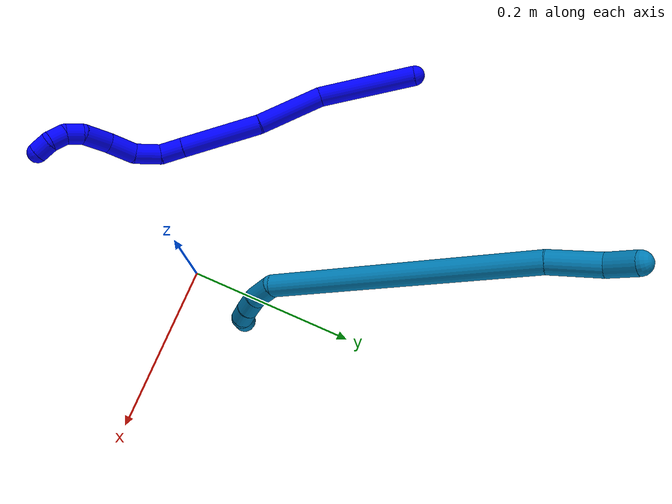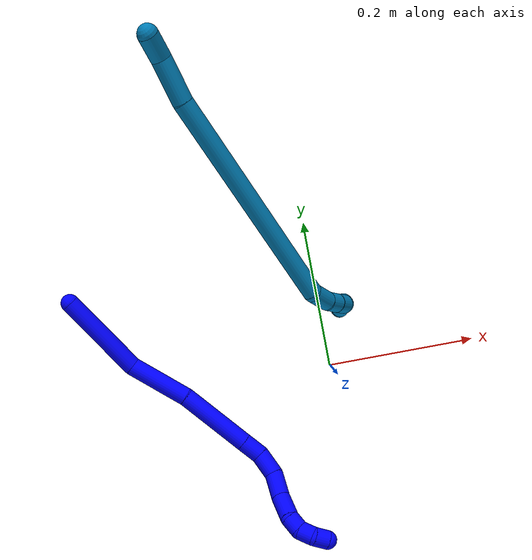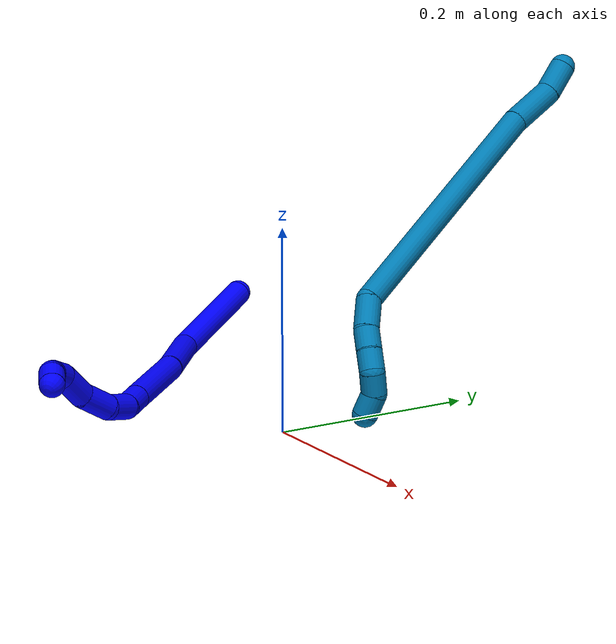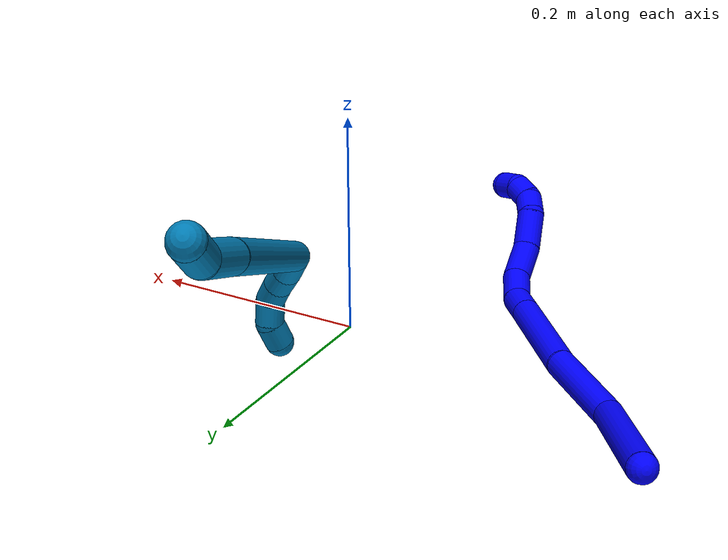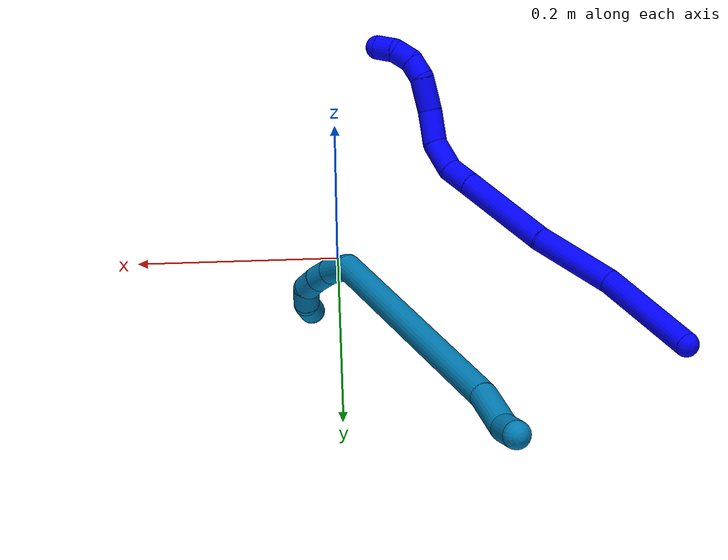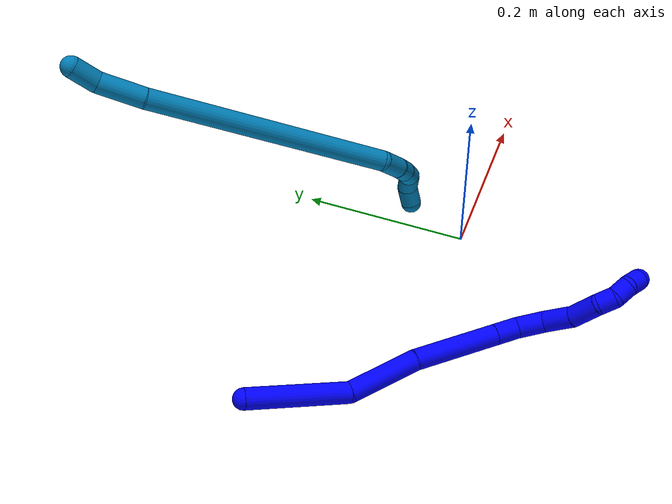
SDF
<sdf version="1.7">
 <world name="default">
  <model name="1">
   <static>0</static>
   <link name="1">
    <collision name="collision-cylinder-e_1_1_4">
     <pose>0.005987 -0.009109 -0.059688 2.99015 0.098828 1.15537</pose>
     <geometry><cylinder><radius>0.0125</radius><length>0.12135</length></cylinder></geometry>
     <surface>
      <friction><ode><mu>1.16</mu><mu2>1.16</mu2><slip1>0</slip1><slip2>0</slip2></ode></friction>
      <contact><ode><kp>1e+06</kp><kd>1</kd><max_vel>0</max_vel><min_depth>0.001</min_depth></ode></contact>
     </surface>
    </collision>
    <visual name="visual-cylinder-e_1_1_4">
     <pose>0.005987 -0.009109 -0.059688 2.99015 0.098828 1.15537</pose>
     <geometry><cylinder><radius>0.0125</radius><length>0.12135</length></cylinder></geometry>
     <material><ambient>0 0 1 1</ambient></material>
    </visual>
    <collision name="collision-cylinder-e_2_4_5">
     <pose>0.031057 -0.018749 -0.157565 3.12768 0.46339 3.08263</pose>
     <geometry><cylinder><radius>0.0125</radius><length>0.085391</length></cylinder></geometry>
     <surface>
      <friction><ode><mu>1.16</mu><mu2>1.16</mu2><slip1>0</slip1><slip2>0</slip2></ode></friction>
      <contact><ode><kp>1e+06</kp><kd>1</kd><max_vel>0</max_vel><min_depth>0.001</min_depth></ode></contact>
     </surface>
    </collision>
    <visual name="visual-cylinder-e_2_4_5">
     <pose>0.031057 -0.018749 -0.157565 3.12768 0.46339 3.08263</pose>
     <geometry><cylinder><radius>0.0125</radius><length>0.085391</length></cylinder></geometry>
     <material><ambient>0 0 1 1</ambient></material>
    </visual>
    <collision name="collision-cylinder-e_3_5_6">
     <pose>0.067427 -0.02543 -0.24259 3.01104 0.35079 2.43483</pose>
     <geometry><cylinder><radius>0.0125</radius><length>0.100602</length></cylinder></geometry>
     <surface>
      <friction><ode><mu>1.16</mu><mu2>1.16</mu2><slip1>0</slip1><slip2>0</slip2></ode></friction>
      <contact><ode><kp>1e+06</kp><kd>1</kd><max_vel>0</max_vel><min_depth>0.001</min_depth></ode></contact>
     </surface>
    </collision>
    <visual name="visual-cylinder-e_3_5_6">
     <pose>0.067427 -0.02543 -0.24259 3.01104 0.35079 2.43483</pose>
     <geometry><cylinder><radius>0.0125</radius><length>0.100602</length></cylinder></geometry>
     <material><ambient>0 0 1 1</ambient></material>
    </visual>
    <collision name="collision-cylinder-e_4_6_7">
     <pose>0.089559 -0.033195 -0.302743 3.02086 0.346715 2.47689</pose>
     <geometry><cylinder><radius>0.0125</radius><length>0.028527</length></cylinder></geometry>
     <surface>
      <friction><ode><mu>1.16</mu><mu2>1.16</mu2><slip1>0</slip1><slip2>0</slip2></ode></friction>
      <contact><ode><kp>1e+06</kp><kd>1</kd><max_vel>0</max_vel><min_depth>0.001</min_depth></ode></contact>
     </surface>
    </collision>
    <visual name="visual-cylinder-e_4_6_7">
     <pose>0.089559 -0.033195 -0.302743 3.02086 0.346715 2.47689</pose>
     <geometry><cylinder><radius>0.0125</radius><length>0.028527</length></cylinder></geometry>
     <material><ambient>0 0 1 1</ambient></material>
    </visual>
    <collision name="collision-cylinder-e_5_7_8">
     <pose>0.10069 -0.042116 -0.329174 2.63336 0.396446 1.31654</pose>
     <geometry><cylinder><radius>0.0125</radius><length>0.032548</length></cylinder></geometry>
     <surface>
      <friction><ode><mu>1.16</mu><mu2>1.16</mu2><slip1>0</slip1><slip2>0</slip2></ode></friction>
      <contact><ode><kp>1e+06</kp><kd>1</kd><max_vel>0</max_vel><min_depth>0.001</min_depth></ode></contact>
     </surface>
    </collision>
    <visual name="visual-cylinder-e_5_7_8">
     <pose>0.10069 -0.042116 -0.329174 2.63336 0.396446 1.31654</pose>
     <geometry><cylinder><radius>0.0125</radius><length>0.032548</length></cylinder></geometry>
     <material><ambient>0 0 1 1</ambient></material>
    </visual>
    <collision name="collision-cylinder-e_6_8_9">
     <pose>0.114398 -0.062611 -0.351257 2.16796 0.435597 0.792045</pose>
     <geometry><cylinder><radius>0.0125</radius><length>0.035186</length></cylinder></geometry>
     <surface>
      <friction><ode><mu>1.16</mu><mu2>1.16</mu2><slip1>0</slip1><slip2>0</slip2></ode></friction>
      <contact><ode><kp>1e+06</kp><kd>1</kd><max_vel>0</max_vel><min_depth>0.001</min_depth></ode></contact>
     </surface>
    </collision>
    <visual name="visual-cylinder-e_6_8_9">
     <pose>0.114398 -0.062611 -0.351257 2.16796 0.435597 0.792045</pose>
     <geometry><cylinder><radius>0.0125</radius><length>0.035186</length></cylinder></geometry>
     <material><ambient>0 0 1 1</ambient></material>
    </visual>
    <collision name="collision-cylinder-e_7_9_10">
     <pose>0.133039 -0.08773 -0.366911 2.08155 0.687011 1.09613</pose>
     <geometry><cylinder><radius>0.0125</radius><length>0.035373</length></cylinder></geometry>
     <surface>
      <friction><ode><mu>1.16</mu><mu2>1.16</mu2><slip1>0</slip1><slip2>0</slip2></ode></friction>
      <contact><ode><kp>1e+06</kp><kd>1</kd><max_vel>0</max_vel><min_depth>0.001</min_depth></ode></contact>
     </surface>
    </collision>
    <visual name="visual-cylinder-e_7_9_10">
     <pose>0.133039 -0.08773 -0.366911 2.08155 0.687011 1.09613</pose>
     <geometry><cylinder><radius>0.0125</radius><length>0.035373</length></cylinder></geometry>
     <material><ambient>0 0 1 1</ambient></material>
    </visual>
    <collision name="collision-cylinder-e_8_10_11">
     <pose>0.150132 -0.104202 -0.380997 2.5912 0.594846 1.6528</pose>
     <geometry><cylinder><radius>0.0125</radius><length>0.020972</length></cylinder></geometry>
     <surface>
      <friction><ode><mu>1.16</mu><mu2>1.16</mu2><slip1>0</slip1><slip2>0</slip2></ode></friction>
      <contact><ode><kp>1e+06</kp><kd>1</kd><max_vel>0</max_vel><min_depth>0.001</min_depth></ode></contact>
     </surface>
    </collision>
    <visual name="visual-cylinder-e_8_10_11">
     <pose>0.150132 -0.104202 -0.380997 2.5912 0.594846 1.6528</pose>
     <geometry><cylinder><radius>0.0125</radius><length>0.020972</length></cylinder></geometry>
     <material><ambient>0 0 1 1</ambient></material>
    </visual>
    <collision name="collision-cylinder-e_9_11_12">
     <pose>0.162707 -0.108713 -0.395833 -3.13736 0.73345 -3.13057</pose>
     <geometry><cylinder><radius>0.0125</radius><length>0.020014</length></cylinder></geometry>
     <surface>
      <friction><ode><mu>1.16</mu><mu2>1.16</mu2><slip1>0</slip1><slip2>0</slip2></ode></friction>
      <contact><ode><kp>1e+06</kp><kd>1</kd><max_vel>0</max_vel><min_depth>0.001</min_depth></ode></contact>
     </surface>
    </collision>
    <visual name="visual-cylinder-e_9_11_12">
     <pose>0.162707 -0.108713 -0.395833 -3.13736 0.73345 -3.13057</pose>
     <geometry><cylinder><radius>0.0125</radius><length>0.020014</length></cylinder></geometry>
     <material><ambient>0 0 1 1</ambient></material>
    </visual>
    <collision name="collision-cylinder-e_10_12_2">
     <pose>0.172572 -0.105755 -0.412311 -2.82862 0.321483 -1.59806</pose>
     <geometry><cylinder><radius>0.0125</radius><length>0.020037</length></cylinder></geometry>
     <surface>
      <friction><ode><mu>1.16</mu><mu2>1.16</mu2><slip1>0</slip1><slip2>0</slip2></ode></friction>
      <contact><ode><kp>1e+06</kp><kd>1</kd><max_vel>0</max_vel><min_depth>0.001</min_depth></ode></contact>
     </surface>
    </collision>
    <visual name="visual-cylinder-e_10_12_2">
     <pose>0.172572 -0.105755 -0.412311 -2.82862 0.321483 -1.59806</pose>
     <geometry><cylinder><radius>0.0125</radius><length>0.020037</length></cylinder></geometry>
     <material><ambient>0 0 1 1</ambient></material>
    </visual>
    <collision name="collision-sphere-2">
     <pose>0.175737 -0.102828 -0.421354 0 -0 0</pose>
     <geometry><sphere><radius>0.0125</radius></sphere></geometry>
     <surface>
      <friction><ode><mu>1.16</mu><mu2>1.16</mu2><slip1>0</slip1><slip2>0</slip2></ode></friction>
      <contact><ode><kp>1e+06</kp><kd>1</kd><max_vel>0</max_vel><min_depth>0.001</min_depth></ode></contact>
     </surface>
    </collision>
    <visual name="visual-sphere-2">
     <pose>0.175737 -0.102828 -0.421354 0 -0 0</pose>
     <geometry><sphere><radius>0.0125</radius></sphere></geometry>
     <material><ambient>0 0 1 1</ambient></material>
    </visual>
    <collision name="collision-sphere-12">
     <pose>0.169406 -0.108681 -0.403267 0 -0 0</pose>
     <geometry><sphere><radius>0.0125</radius></sphere></geometry>
     <surface>
      <friction><ode><mu>1.16</mu><mu2>1.16</mu2><slip1>0</slip1><slip2>0</slip2></ode></friction>
      <contact><ode><kp>1e+06</kp><kd>1</kd><max_vel>0</max_vel><min_depth>0.001</min_depth></ode></contact>
     </surface>
    </collision>
    <visual name="visual-sphere-12">
     <pose>0.169406 -0.108681 -0.403267 0 -0 0</pose>
     <geometry><sphere><radius>0.0125</radius></sphere></geometry>
     <material><ambient>0 0 1 1</ambient></material>
    </visual>
    <collision name="collision-sphere-11">
     <pose>0.156008 -0.108744 -0.3884 0 -0 0</pose>
     <geometry><sphere><radius>0.0125</radius></sphere></geometry>
     <surface>
      <friction><ode><mu>1.16</mu><mu2>1.16</mu2><slip1>0</slip1><slip2>0</slip2></ode></friction>
      <contact><ode><kp>1e+06</kp><kd>1</kd><max_vel>0</max_vel><min_depth>0.001</min_depth></ode></contact>
     </surface>
    </collision>
    <visual name="visual-sphere-11">
     <pose>0.156008 -0.108744 -0.3884 0 -0 0</pose>
     <geometry><sphere><radius>0.0125</radius></sphere></geometry>
     <material><ambient>0 0 1 1</ambient></material>
    </visual>
    <collision name="collision-sphere-10">
     <pose>0.144256 -0.09966 -0.373595 0 -0 0</pose>
     <geometry><sphere><radius>0.0125</radius></sphere></geometry>
     <surface>
      <friction><ode><mu>1.16</mu><mu2>1.16</mu2><slip1>0</slip1><slip2>0</slip2></ode></friction>
      <contact><ode><kp>1e+06</kp><kd>1</kd><max_vel>0</max_vel><min_depth>0.001</min_depth></ode></contact>
     </surface>
    </collision>
    <visual name="visual-sphere-10">
     <pose>0.144256 -0.09966 -0.373595 0 -0 0</pose>
     <geometry><sphere><radius>0.0125</radius></sphere></geometry>
     <material><ambient>0 0 1 1</ambient></material>
    </visual>
    <collision name="collision-sphere-9">
     <pose>0.121821 -0.075801 -0.360226 0 -0 0</pose>
     <geometry><sphere><radius>0.0125</radius></sphere></geometry>
     <surface>
      <friction><ode><mu>1.16</mu><mu2>1.16</mu2><slip1>0</slip1><slip2>0</slip2></ode></friction>
      <contact><ode><kp>1e+06</kp><kd>1</kd><max_vel>0</max_vel><min_depth>0.001</min_depth></ode></contact>
     </surface>
    </collision>
    <visual name="visual-sphere-9">
     <pose>0.121821 -0.075801 -0.360226 0 -0 0</pose>
     <geometry><sphere><radius>0.0125</radius></sphere></geometry>
     <material><ambient>0 0 1 1</ambient></material>
    </visual>
    <collision name="collision-sphere-4">
     <pose>0.011973 -0.018218 -0.119376 0 -0 0</pose>
     <geometry><sphere><radius>0.0125</radius></sphere></geometry>
     <surface>
      <friction><ode><mu>1.16</mu><mu2>1.16</mu2><slip1>0</slip1><slip2>0</slip2></ode></friction>
      <contact><ode><kp>1e+06</kp><kd>1</kd><max_vel>0</max_vel><min_depth>0.001</min_depth></ode></contact>
     </surface>
    </collision>
    <visual name="visual-sphere-4">
     <pose>0.011973 -0.018218 -0.119376 0 -0 0</pose>
     <geometry><sphere><radius>0.0125</radius></sphere></geometry>
     <material><ambient>0 0 1 1</ambient></material>
    </visual>
    <collision name="collision-sphere-1">
     <geometry><sphere><radius>0.0125</radius></sphere></geometry>
     <surface>
      <friction><ode><mu>1.16</mu><mu2>1.16</mu2><slip1>0</slip1><slip2>0</slip2></ode></friction>
      <contact><ode><kp>1e+06</kp><kd>1</kd><max_vel>0</max_vel><min_depth>0.001</min_depth></ode></contact>
     </surface>
    </collision>
    <visual name="visual-sphere-1">
     <geometry><sphere><radius>0.0125</radius></sphere></geometry>
     <material><ambient>0 0 1 1</ambient></material>
    </visual>
    <collision name="collision-sphere-8">
     <pose>0.106974 -0.049421 -0.342288 0 -0 0</pose>
     <geometry><sphere><radius>0.0125</radius></sphere></geometry>
     <surface>
      <friction><ode><mu>1.16</mu><mu2>1.16</mu2><slip1>0</slip1><slip2>0</slip2></ode></friction>
      <contact><ode><kp>1e+06</kp><kd>1</kd><max_vel>0</max_vel><min_depth>0.001</min_depth></ode></contact>
     </surface>
    </collision>
    <visual name="visual-sphere-8">
     <pose>0.106974 -0.049421 -0.342288 0 -0 0</pose>
     <geometry><sphere><radius>0.0125</radius></sphere></geometry>
     <material><ambient>0 0 1 1</ambient></material>
    </visual>
    <collision name="collision-sphere-5">
     <pose>0.050142 -0.019281 -0.195754 0 -0 0</pose>
     <geometry><sphere><radius>0.0125</radius></sphere></geometry>
     <surface>
      <friction><ode><mu>1.16</mu><mu2>1.16</mu2><slip1>0</slip1><slip2>0</slip2></ode></friction>
      <contact><ode><kp>1e+06</kp><kd>1</kd><max_vel>0</max_vel><min_depth>0.001</min_depth></ode></contact>
     </surface>
    </collision>
    <visual name="visual-sphere-5">
     <pose>0.050142 -0.019281 -0.195754 0 -0 0</pose>
     <geometry><sphere><radius>0.0125</radius></sphere></geometry>
     <material><ambient>0 0 1 1</ambient></material>
    </visual>
    <collision name="collision-sphere-6">
     <pose>0.084712 -0.03158 -0.289426 0 -0 0</pose>
     <geometry><sphere><radius>0.0125</radius></sphere></geometry>
     <surface>
      <friction><ode><mu>1.16</mu><mu2>1.16</mu2><slip1>0</slip1><slip2>0</slip2></ode></friction>
      <contact><ode><kp>1e+06</kp><kd>1</kd><max_vel>0</max_vel><min_depth>0.001</min_depth></ode></contact>
     </surface>
    </collision>
    <visual name="visual-sphere-6">
     <pose>0.084712 -0.03158 -0.289426 0 -0 0</pose>
     <geometry><sphere><radius>0.0125</radius></sphere></geometry>
     <material><ambient>0 0 1 1</ambient></material>
    </visual>
    <collision name="collision-sphere-7">
     <pose>0.094406 -0.034811 -0.31606 0 -0 0</pose>
     <geometry><sphere><radius>0.0125</radius></sphere></geometry>
     <surface>
      <friction><ode><mu>1.16</mu><mu2>1.16</mu2><slip1>0</slip1><slip2>0</slip2></ode></friction>
      <contact><ode><kp>1e+06</kp><kd>1</kd><max_vel>0</max_vel><min_depth>0.001</min_depth></ode></contact>
     </surface>
    </collision>
    <visual name="visual-sphere-7">
     <pose>0.094406 -0.034811 -0.31606 0 -0 0</pose>
     <geometry><sphere><radius>0.0125</radius></sphere></geometry>
     <material><ambient>0 0 1 1</ambient></material>
    </visual>
    <inertial>
     <pose>0.069176 -0.038738 -0.22793 0 -0 0</pose>
     <mass>0.5</mass>
     <inertia>
      <ixx>0.000174</ixx>
      <ixy>0</ixy>
      <ixz>0</ixz>
      <iyy>0.000272</iyy>
      <iyz>0</iyz>
      <izz>-6.9e-05</izz>
     </inertia>
    </inertial>
   </link>
   <pose>-0.331421 0.148685 0.038222 -0.914349 -0.91322 0.096742</pose>
  </model>
  <model name="9">
   <static>0</static>
   <link name="9">
    <collision name="collision-cylinder-e_1_1_4">
     <pose>-0.000879 -0.001204 -0.016304 3.06786 -0.053726 -1.25916</pose>
     <geometry><cylinder><radius>0.0125</radius><length>0.032745</length></cylinder></geometry>
     <surface>
      <friction><ode><mu>1.16</mu><mu2>1.16</mu2><slip1>0</slip1><slip2>0</slip2></ode></friction>
      <contact><ode><kp>1e+06</kp><kd>1</kd><max_vel>0</max_vel><min_depth>0.001</min_depth></ode></contact>
     </surface>
    </collision>
    <visual name="visual-cylinder-e_1_1_4">
     <pose>-0.000879 -0.001204 -0.016304 3.06786 -0.053726 -1.25916</pose>
     <geometry><cylinder><radius>0.0125</radius><length>0.032745</length></cylinder></geometry>
     <material><ambient>0 0.490196 0.709804 1</ambient></material>
    </visual>
    <collision name="collision-cylinder-e_2_4_5">
     <pose>0.003319 -0.010991 -0.058208 2.81812 0.18589 1.0381</pose>
     <geometry><cylinder><radius>0.0125</radius><length>0.054944</length></cylinder></geometry>
     <surface>
      <friction><ode><mu>1.16</mu><mu2>1.16</mu2><slip1>0</slip1><slip2>0</slip2></ode></friction>
      <contact><ode><kp>1e+06</kp><kd>1</kd><max_vel>0</max_vel><min_depth>0.001</min_depth></ode></contact>
     </surface>
    </collision>
    <visual name="visual-cylinder-e_2_4_5">
     <pose>0.003319 -0.010991 -0.058208 2.81812 0.18589 1.0381</pose>
     <geometry><cylinder><radius>0.0125</radius><length>0.054944</length></cylinder></geometry>
     <material><ambient>0 0.490196 0.709804 1</ambient></material>
    </visual>
    <collision name="collision-cylinder-e_3_5_6">
     <pose>0.043386 -0.046239 -0.223415 2.95285 0.241375 1.81618</pose>
     <geometry><cylinder><radius>0.0125</radius><length>0.292753</length></cylinder></geometry>
     <surface>
      <friction><ode><mu>1.16</mu><mu2>1.16</mu2><slip1>0</slip1><slip2>0</slip2></ode></friction>
      <contact><ode><kp>1e+06</kp><kd>1</kd><max_vel>0</max_vel><min_depth>0.001</min_depth></ode></contact>
     </surface>
    </collision>
    <visual name="visual-cylinder-e_3_5_6">
     <pose>0.043386 -0.046239 -0.223415 2.95285 0.241375 1.81618</pose>
     <geometry><cylinder><radius>0.0125</radius><length>0.292753</length></cylinder></geometry>
     <material><ambient>0 0.490196 0.709804 1</ambient></material>
    </visual>
    <collision name="collision-cylinder-e_4_6_7">
     <pose>0.079253 -0.067862 -0.378351 -2.82363 0.054299 -0.335565</pose>
     <geometry><cylinder><radius>0.0125</radius><length>0.032318</length></cylinder></geometry>
     <surface>
      <friction><ode><mu>1.16</mu><mu2>1.16</mu2><slip1>0</slip1><slip2>0</slip2></ode></friction>
      <contact><ode><kp>1e+06</kp><kd>1</kd><max_vel>0</max_vel><min_depth>0.001</min_depth></ode></contact>
     </surface>
    </collision>
    <visual name="visual-cylinder-e_4_6_7">
     <pose>0.079253 -0.067862 -0.378351 -2.82363 0.054299 -0.335565</pose>
     <geometry><cylinder><radius>0.0125</radius><length>0.032318</length></cylinder></geometry>
     <material><ambient>0 0.490196 0.709804 1</ambient></material>
    </visual>
    <collision name="collision-cylinder-e_5_7_8">
     <pose>0.079984 -0.057226 -0.403023 -2.60247 -0.01335 0.048311</pose>
     <geometry><cylinder><radius>0.0125</radius><length>0.021784</length></cylinder></geometry>
     <surface>
      <friction><ode><mu>1.16</mu><mu2>1.16</mu2><slip1>0</slip1><slip2>0</slip2></ode></friction>
      <contact><ode><kp>1e+06</kp><kd>1</kd><max_vel>0</max_vel><min_depth>0.001</min_depth></ode></contact>
     </surface>
    </collision>
    <visual name="visual-cylinder-e_5_7_8">
     <pose>0.079984 -0.057226 -0.403023 -2.60247 -0.01335 0.048311</pose>
     <geometry><cylinder><radius>0.0125</radius><length>0.021784</length></cylinder></geometry>
     <material><ambient>0 0.490196 0.709804 1</ambient></material>
    </visual>
    <collision name="collision-cylinder-e_6_8_9">
     <pose>0.078641 -0.046018 -0.421245 -2.57734 -0.113585 0.387368</pose>
     <geometry><cylinder><radius>0.0125</radius><length>0.021144</length></cylinder></geometry>
     <surface>
      <friction><ode><mu>1.16</mu><mu2>1.16</mu2><slip1>0</slip1><slip2>0</slip2></ode></friction>
      <contact><ode><kp>1e+06</kp><kd>1</kd><max_vel>0</max_vel><min_depth>0.001</min_depth></ode></contact>
     </surface>
    </collision>
    <visual name="visual-cylinder-e_6_8_9">
     <pose>0.078641 -0.046018 -0.421245 -2.57734 -0.113585 0.387368</pose>
     <geometry><cylinder><radius>0.0125</radius><length>0.021144</length></cylinder></geometry>
     <material><ambient>0 0.490196 0.709804 1</ambient></material>
    </visual>
    <collision name="collision-cylinder-e_7_9_10">
     <pose>0.07043 -0.035183 -0.436758 -2.47538 -0.693171 1.61369</pose>
     <geometry><cylinder><radius>0.0125</radius><length>0.02195</length></cylinder></geometry>
     <surface>
      <friction><ode><mu>1.16</mu><mu2>1.16</mu2><slip1>0</slip1><slip2>0</slip2></ode></friction>
      <contact><ode><kp>1e+06</kp><kd>1</kd><max_vel>0</max_vel><min_depth>0.001</min_depth></ode></contact>
     </surface>
    </collision>
    <visual name="visual-cylinder-e_7_9_10">
     <pose>0.07043 -0.035183 -0.436758 -2.47538 -0.693171 1.61369</pose>
     <geometry><cylinder><radius>0.0125</radius><length>0.02195</length></cylinder></geometry>
     <material><ambient>0 0.490196 0.709804 1</ambient></material>
    </visual>
    <collision name="collision-cylinder-e_8_10_2">
     <pose>0.056108 -0.029778 -0.451854 -3.11937 -0.712439 3.08188</pose>
     <geometry><cylinder><radius>0.0125</radius><length>0.022362</length></cylinder></geometry>
     <surface>
      <friction><ode><mu>1.16</mu><mu2>1.16</mu2><slip1>0</slip1><slip2>0</slip2></ode></friction>
      <contact><ode><kp>1e+06</kp><kd>1</kd><max_vel>0</max_vel><min_depth>0.001</min_depth></ode></contact>
     </surface>
    </collision>
    <visual name="visual-cylinder-e_8_10_2">
     <pose>0.056108 -0.029778 -0.451854 -3.11937 -0.712439 3.08188</pose>
     <geometry><cylinder><radius>0.0125</radius><length>0.022362</length></cylinder></geometry>
     <material><ambient>0 0.490196 0.709804 1</ambient></material>
    </visual>
    <collision name="collision-sphere-2">
     <pose>0.048799 -0.02959 -0.460313 0 -0 0</pose>
     <geometry><sphere><radius>0.0125</radius></sphere></geometry>
     <surface>
      <friction><ode><mu>1.16</mu><mu2>1.16</mu2><slip1>0</slip1><slip2>0</slip2></ode></friction>
      <contact><ode><kp>1e+06</kp><kd>1</kd><max_vel>0</max_vel><min_depth>0.001</min_depth></ode></contact>
     </surface>
    </collision>
    <visual name="visual-sphere-2">
     <pose>0.048799 -0.02959 -0.460313 0 -0 0</pose>
     <geometry><sphere><radius>0.0125</radius></sphere></geometry>
     <material><ambient>0 0.490196 0.709804 1</ambient></material>
    </visual>
    <collision name="collision-sphere-10">
     <pose>0.063417 -0.029966 -0.443395 0 -0 0</pose>
     <geometry><sphere><radius>0.0125</radius></sphere></geometry>
     <surface>
      <friction><ode><mu>1.16</mu><mu2>1.16</mu2><slip1>0</slip1><slip2>0</slip2></ode></friction>
      <contact><ode><kp>1e+06</kp><kd>1</kd><max_vel>0</max_vel><min_depth>0.001</min_depth></ode></contact>
     </surface>
    </collision>
    <visual name="visual-sphere-10">
     <pose>0.063417 -0.029966 -0.443395 0 -0 0</pose>
     <geometry><sphere><radius>0.0125</radius></sphere></geometry>
     <material><ambient>0 0.490196 0.709804 1</ambient></material>
    </visual>
    <collision name="collision-sphere-9">
     <pose>0.077442 -0.040401 -0.430121 0 -0 0</pose>
     <geometry><sphere><radius>0.0125</radius></sphere></geometry>
     <surface>
      <friction><ode><mu>1.16</mu><mu2>1.16</mu2><slip1>0</slip1><slip2>0</slip2></ode></friction>
      <contact><ode><kp>1e+06</kp><kd>1</kd><max_vel>0</max_vel><min_depth>0.001</min_depth></ode></contact>
     </surface>
    </collision>
    <visual name="visual-sphere-9">
     <pose>0.077442 -0.040401 -0.430121 0 -0 0</pose>
     <geometry><sphere><radius>0.0125</radius></sphere></geometry>
     <material><ambient>0 0.490196 0.709804 1</ambient></material>
    </visual>
    <collision name="collision-sphere-4">
     <pose>-0.001758 -0.002409 -0.032609 0 -0 0</pose>
     <geometry><sphere><radius>0.0125</radius></sphere></geometry>
     <surface>
      <friction><ode><mu>1.16</mu><mu2>1.16</mu2><slip1>0</slip1><slip2>0</slip2></ode></friction>
      <contact><ode><kp>1e+06</kp><kd>1</kd><max_vel>0</max_vel><min_depth>0.001</min_depth></ode></contact>
     </surface>
    </collision>
    <visual name="visual-sphere-4">
     <pose>-0.001758 -0.002409 -0.032609 0 -0 0</pose>
     <geometry><sphere><radius>0.0125</radius></sphere></geometry>
     <material><ambient>0 0.490196 0.709804 1</ambient></material>
    </visual>
    <collision name="collision-sphere-1">
     <geometry><sphere><radius>0.0125</radius></sphere></geometry>
     <surface>
      <friction><ode><mu>1.16</mu><mu2>1.16</mu2><slip1>0</slip1><slip2>0</slip2></ode></friction>
      <contact><ode><kp>1e+06</kp><kd>1</kd><max_vel>0</max_vel><min_depth>0.001</min_depth></ode></contact>
     </surface>
    </collision>
    <visual name="visual-sphere-1">
     <geometry><sphere><radius>0.0125</radius></sphere></geometry>
     <material><ambient>0 0.490196 0.709804 1</ambient></material>
    </visual>
    <collision name="collision-sphere-8">
     <pose>0.079839 -0.051635 -0.41237 0 -0 0</pose>
     <geometry><sphere><radius>0.0125</radius></sphere></geometry>
     <surface>
      <friction><ode><mu>1.16</mu><mu2>1.16</mu2><slip1>0</slip1><slip2>0</slip2></ode></friction>
      <contact><ode><kp>1e+06</kp><kd>1</kd><max_vel>0</max_vel><min_depth>0.001</min_depth></ode></contact>
     </surface>
    </collision>
    <visual name="visual-sphere-8">
     <pose>0.079839 -0.051635 -0.41237 0 -0 0</pose>
     <geometry><sphere><radius>0.0125</radius></sphere></geometry>
     <material><ambient>0 0.490196 0.709804 1</ambient></material>
    </visual>
    <collision name="collision-sphere-5">
     <pose>0.008396 -0.019572 -0.083806 0 -0 0</pose>
     <geometry><sphere><radius>0.0125</radius></sphere></geometry>
     <surface>
      <friction><ode><mu>1.16</mu><mu2>1.16</mu2><slip1>0</slip1><slip2>0</slip2></ode></friction>
      <contact><ode><kp>1e+06</kp><kd>1</kd><max_vel>0</max_vel><min_depth>0.001</min_depth></ode></contact>
     </surface>
    </collision>
    <visual name="visual-sphere-5">
     <pose>0.008396 -0.019572 -0.083806 0 -0 0</pose>
     <geometry><sphere><radius>0.0125</radius></sphere></geometry>
     <material><ambient>0 0.490196 0.709804 1</ambient></material>
    </visual>
    <collision name="collision-sphere-6">
     <pose>0.078376 -0.072906 -0.363024 0 -0 0</pose>
     <geometry><sphere><radius>0.0125</radius></sphere></geometry>
     <surface>
      <friction><ode><mu>1.16</mu><mu2>1.16</mu2><slip1>0</slip1><slip2>0</slip2></ode></friction>
      <contact><ode><kp>1e+06</kp><kd>1</kd><max_vel>0</max_vel><min_depth>0.001</min_depth></ode></contact>
     </surface>
    </collision>
    <visual name="visual-sphere-6">
     <pose>0.078376 -0.072906 -0.363024 0 -0 0</pose>
     <geometry><sphere><radius>0.0125</radius></sphere></geometry>
     <material><ambient>0 0.490196 0.709804 1</ambient></material>
    </visual>
    <collision name="collision-sphere-7">
     <pose>0.08013 -0.062818 -0.393677 0 -0 0</pose>
     <geometry><sphere><radius>0.0125</radius></sphere></geometry>
     <surface>
      <friction><ode><mu>1.16</mu><mu2>1.16</mu2><slip1>0</slip1><slip2>0</slip2></ode></friction>
      <contact><ode><kp>1e+06</kp><kd>1</kd><max_vel>0</max_vel><min_depth>0.001</min_depth></ode></contact>
     </surface>
    </collision>
    <visual name="visual-sphere-7">
     <pose>0.08013 -0.062818 -0.393677 0 -0 0</pose>
     <geometry><sphere><radius>0.0125</radius></sphere></geometry>
     <material><ambient>0 0.490196 0.709804 1</ambient></material>
    </visual>
    <inertial>
     <pose>0.043244 -0.040062 -0.237485 0 -0 0</pose>
     <mass>0.5</mass>
     <inertia>
      <ixx>0.001513</ixx>
      <ixy>0</ixy>
      <ixz>0</ixz>
      <iyy>0.002569</iyy>
      <iyz>0</iyz>
      <izz>-0.000155</izz>
     </inertia>
    </inertial>
   </link>
   <pose>-0.14156 0.415278 0.278823 -0.542247 -0.672642 -0.346685</pose>
  </model>
 </world>
</sdf>
